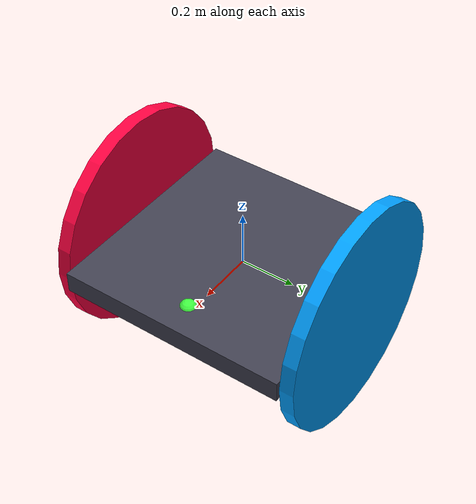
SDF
<sdf version='1.11'>
  <model name='basic_robot'>
    <link name='chassis'>
      <inertial>
        <pose>3.9994667377682967e-05 0 -0.24996333822157049 0 0 0</pose>
        <mass>15.002000000000001</mass>
        <inertia>
          <ixx>0.8579645110860219</ixx>
          <ixy>0</ixy>
          <ixz>-0.00016497800293294231</ixz>
          <iyy>0.85814448708922153</iyy>
          <iyz>0</iyz>
          <izz>1.7017432572532001</izz>
        </inertia>
      </inertial>
      <collision name='chassis_collision'>
        <pose>0 0 0 0 0 0</pose>
        <geometry>
          <box>
            <size>0.82499999999999996 0.82499999999999996 0.074999999999999997</size>
          </box>
        </geometry>
      </collision>
      <collision name='chassis_fixed_joint_lump__lidar_dome_collision_1'>
        <pose>0.29999999999999999 0 0.025000000000000001 0 0 0</pose>
        <geometry>
          <sphere>
            <radius>0.03125</radius>
          </sphere>
        </geometry>
      </collision>
      <visual name='chassis_visual'>
        <pose>0 0 0 0 0 0</pose>
        <geometry>
          <box>
            <size>0.82499999999999996 0.82499999999999996 0.074999999999999997</size>
          </box>
        </geometry>
        <material>
          <diffuse>0.25 0.25 0.3125 1</diffuse>
          <ambient>0.25 0.25 0.3125 1</ambient>
        </material>
      </visual>
      <visual name='chassis_fixed_joint_lump__lidar_dome_visual_1'>
        <pose>0.29999999999999999 0 0.025000000000000001 0 0 0</pose>
        <geometry>
          <sphere>
            <radius>0.03125</radius>
          </sphere>
        </geometry>
        <material>
          <diffuse>0.25 1 0.25 1</diffuse>
          <ambient>0.25 1 0.25 1</ambient>
        </material>
      </visual>
    </link>
    <joint name='left_wheel_joint' type='revolute'>
      <pose relative_to='chassis'>0 0.4375 0 0 0 0</pose>
      <parent>chassis</parent>
      <child>left_wheel</child>
      <axis>
        <xyz>0 1 0</xyz>
        <limit>
          <effort>100</effort>
          <velocity>5</velocity>
          <lower>-inf</lower>
          <upper>inf</upper>
        </limit>
        <dynamics>
          <damping>0.5</damping>
          <friction>0.20000000000000001</friction>
          <spring_reference>0</spring_reference>
          <spring_stiffness>0</spring_stiffness>
        </dynamics>
      </axis>
    </joint>
    <link name='left_wheel'>
      <pose relative_to='left_wheel_joint'>0 0 0 0 0 0</pose>
      <inertial>
        <pose>0 0 0 0 0 0</pose>
        <mass>2</mass>
        <inertia>
          <ixx>0.080416699999999994</ixx>
          <ixy>0</ixy>
          <ixz>0</ixz>
          <iyy>0.080416699999999994</iyy>
          <iyz>0</iyz>
          <izz>0.16</izz>
        </inertia>
      </inertial>
      <collision name='left_wheel_collision'>
        <pose>0 0 0 1.5707949999999999 0 0</pose>
        <geometry>
          <cylinder>
            <length>0.050000000000000003</length>
            <radius>0.40000000000000002</radius>
          </cylinder>
        </geometry>
      </collision>
      <visual name='left_wheel_visual'>
        <pose>0 0 0 1.5707949999999999 0 0</pose>
        <geometry>
          <cylinder>
            <length>0.050000000000000003</length>
            <radius>0.40000000000000002</radius>
          </cylinder>
        </geometry>
        <material>
          <diffuse>0 0.625 1 1</diffuse>
          <ambient>0 0.625 1 1</ambient>
        </material>
      </visual>
    </link>
    <joint name='right_wheel_joint' type='revolute'>
      <pose relative_to='chassis'>0 -0.4375 0 0 0 0</pose>
      <parent>chassis</parent>
      <child>right_wheel</child>
      <axis>
        <xyz>0 1 0</xyz>
        <limit>
          <effort>100</effort>
          <velocity>5</velocity>
          <lower>-inf</lower>
          <upper>inf</upper>
        </limit>
        <dynamics>
          <damping>0.5</damping>
          <friction>0.20000000000000001</friction>
          <spring_reference>0</spring_reference>
          <spring_stiffness>0</spring_stiffness>
        </dynamics>
      </axis>
    </joint>
    <link name='right_wheel'>
      <pose relative_to='right_wheel_joint'>0 0 0 0 0 0</pose>
      <inertial>
        <pose>0 0 0 0 0 0</pose>
        <mass>2</mass>
        <inertia>
          <ixx>0.080416699999999994</ixx>
          <ixy>0</ixy>
          <ixz>0</ixz>
          <iyy>0.080416699999999994</iyy>
          <iyz>0</iyz>
          <izz>0.16</izz>
        </inertia>
      </inertial>
      <collision name='right_wheel_collision'>
        <pose>0 0 0 1.5707949999999999 0 0</pose>
        <geometry>
          <cylinder>
            <length>0.050000000000000003</length>
            <radius>0.40000000000000002</radius>
          </cylinder>
        </geometry>
      </collision>
      <visual name='right_wheel_visual'>
        <pose>0 0 0 1.5707949999999999 0 0</pose>
        <geometry>
          <cylinder>
            <length>0.050000000000000003</length>
            <radius>0.40000000000000002</radius>
          </cylinder>
        </geometry>
        <material>
          <diffuse>1 0 0.25 1</diffuse>
          <ambient>1 0 0.25 1</ambient>
        </material>
      </visual>
    </link>
    <plugin name='gz::sim::systems::DiffDrive' filename='gz-sim-diff-drive-system'>
      <left_joint>left_wheel_joint</left_joint>
      <right_joint>right_wheel_joint</right_joint>
      <topic>/cmd_vel</topic>
      <odom_topic>/odom</odom_topic>
      <tf_topic>/basic_robot/tf</tf_topic>
      <wheel_separation>0.825</wheel_separation>
      <wheel_radius>0.4</wheel_radius>
      <odom_publish_frequency>50</odom_publish_frequency>
      <frame_id>odom</frame_id>
      <child_frame_id>chassis</child_frame_id>
      <max_linear_velocity>2.0</max_linear_velocity>
      <max_angular_velocity>6.28</max_angular_velocity>
    </plugin>
    <plugin name='gz::sim::systems::JointStatePublisher' filename='gz-sim-joint-state-publisher-system'>
      <topic>/joint_states</topic>
    </plugin>
    <plugin name='gz::sim::systems::PosePublisher' filename='gz-sim-pose-publisher-system'>
      <publish_model_pose>true</publish_model_pose>
      <publish_link_pose>true</publish_link_pose>
      <publish_nested_model_pose>true</publish_nested_model_pose>
      <use_pose_vector_msg>true</use_pose_vector_msg>
      <update_frequency>30</update_frequency>
      <static_publisher>true</static_publisher>
      <static_update_frequency>30</static_update_frequency>
    </plugin>
    <frame name='lidar_joint' attached_to='chassis'>
      <pose>0.29999999999999999 0 0.025000000000000001 0 0 0</pose>
    </frame>
    <frame name='lidar_dome' attached_to='lidar_joint'>
      <pose>0 0 0 0 0 0</pose>
    </frame>
  </model>
</sdf>
